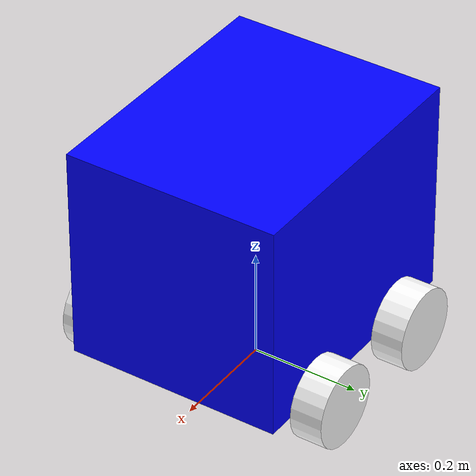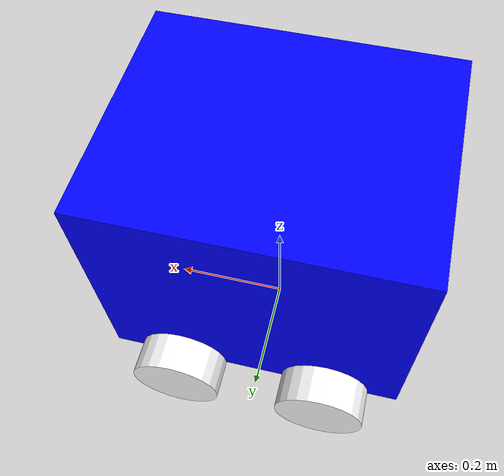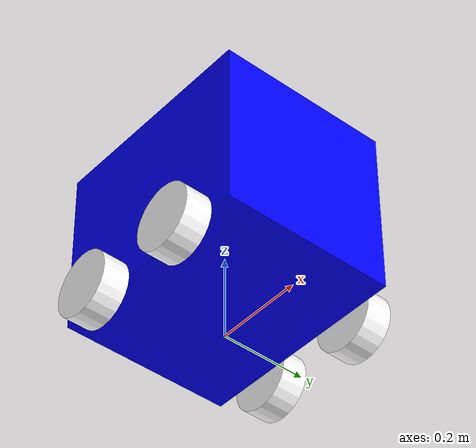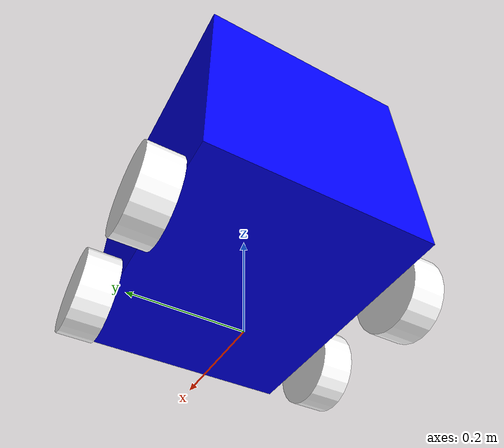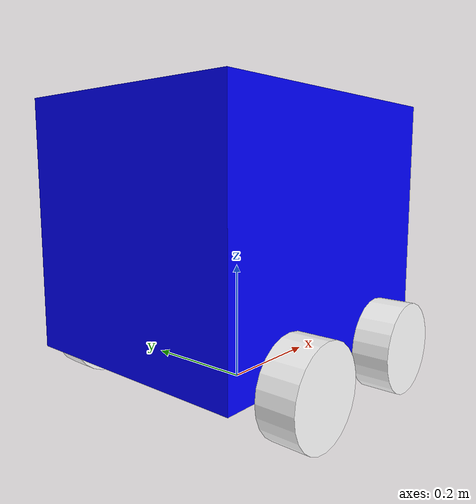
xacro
<?xml version="1.0"?>

<robot name="complete_M.A.R.S_prototype2" xmlns:xacro="http://www.ros.org/wiki/xacro">
<xacro:property name="radius" value="0.075" />
<xacro:property name="length" value="0.06" />

<!--MATERIAL COLORS -->
  <material name="blue">
    <color rgba="0 0 1 1"/>
  </material>

<material name="red">
    <color rgba="1 0 0 1"/>
  </material>

<material name="pink">
    <color rgba="0.8 0 1 0.5"/>
  </material>

    <material name="white">
    <color rgba="1 1 1 1"/>
  </material>

  <material name="green">
    <color rgba="0 1 0 1"/>
</material>

<gazebo reference="base_link_to_wheel1">
  <material>Gazebo/orange</material>
</gazebo>

<!--Visual of the Link-->
  <link name="base_link">
    <visual>

    <geometry>

        <box size="0.5 0.40 0.40"/>
       </geometry>
  <!-- Setting up the origin of the link -->
      <origin rpy="0 0 0" xyz="0 0 0.275"/>
       <material name="blue"/>
    </visual>
<!--  COLLISION -->
    <collision>
      <geometry>
       <box size="0.51 0.41 0.41"/>

      </geometry>
      <origin rpy="0 0 0" xyz="0 0 0.275"/>
    </collision>
<!--  INERTIAL -->
    <inertial>
      <mass value="5.0"/>

      <inertia
          ixx="0.1333333" ixy="0" ixz="0"
          iyy="0.1708333" iyz="0"
          izz="0.1708333"
      />
      <origin rpy="0 0 0" xyz="0 0 0.275"/>
    </inertial>

  </link>

<!--WHEEL_1-->
<!--Visual of the Link-->
  <link name="wheel1">
    <visual>
      <geometry>
      <cylinder radius="${radius}" length="${length}"/>

      </geometry>
  <!-- Setting up the origin of the link -->
       <origin rpy="0 1.57075 1.57075" xyz="0 0 0"/>
        <material name="white"/>
    </visual>
     <collision>
<!--  COLLISION -->
     <origin rpy="0 1.57075 1.57075" xyz="0 0 0"/>
      <geometry>
         <cylinder radius="${radius}" length="${length}"/>
      </geometry>
    </collision>
<!--  INERTIAL -->
 <inertial>
      <origin xyz="0 0 0" rpy="0 1.5707 1.5707"/>
      <mass value="0.4"/>
      <cylinder_inertia m="0.4" r="0.075" h="0.06"/>
      <inertia
        ixx="0.0006825" ixy="0.0" ixz="0.0"
        iyy="0.0006825" iyz="0.0"
        izz="0.001125"/>
    </inertial>

  </link>

<joint name="base_link_to_wheel1" type="continuous">
  <axis xyz="0 1 0"/>
<origin rpy="0 0 0" xyz="0.125 0.23 0.075"/>
 <joint_properties damping="1.0" friction="0.0"/>
    <parent link="base_link"/>
    <child link="wheel1"/>

  </joint>

<!--WHEEL_2-->
<!--Visual of the Link-->
<link name="wheel2">
    <visual>
      <geometry>
         <cylinder radius="${radius}" length="${length}"/>
      </geometry>
  <!-- Setting up the origin of the link -->
       <origin rpy="0 1.57075 1.57075" xyz="0 0 0"/>
       <material name="white"/>
    </visual>
     <collision>
<!--  COLLISION -->
     <origin rpy="0 1.57075 1.57075" xyz="0 0 0"/>
      <geometry>
         <cylinder radius="${radius}" length="${length}"/>
      </geometry>
    </collision>
<!--  INERTIAL -->
    <inertial>
      <origin xyz="0 0 0" rpy="0 1.5707 1.5707"/>
      <mass value="0.4"/>
      <cylinder_inertia m="0.4" r="0.075" h="0.06"/>
      <inertia
        ixx="0.0006825" ixy="0.0" ixz="0.0"
        iyy="0.0006825" iyz="0.0"
        izz="0.001125"/>
    </inertial>
  </link>

<joint name="base_link_to_wheel2" type="continuous">
    <parent link="base_link"/>
    <child link="wheel2"/>
    <origin rpy="0 0 0" xyz="-0.125 0.23 0.075"/>
    <joint_properties damping="1.0" friction="0.0"/>
    <axis xyz="0 1 0"/>

  </joint>
<!--WHEEL_3-->
<!--Visual of the Link-->
<link name="wheel3">
    <visual>
      <geometry>
  <!-- Setting up the origin of the link -->
         <cylinder radius="${radius}" length="${length}"/>
      </geometry>
       <origin rpy="0 1.57075 1.57075" xyz="0 0 0"/>
          <material name="white"/>
    </visual>
    <collision>
<!--  COLLISION -->
    <origin rpy="0 1.57075 1.57075" xyz="0 0 0"/>
      <geometry>
        <cylinder radius="${radius}" length="${length}"/>
      </geometry>
    </collision>
<!--  INERTIAL -->
    <inertial>
      <origin xyz="0 0 0" rpy="0 1.5707 1.5707"/>
      <mass value="0.4"/>
      <cylinder_inertia m="0.4" r="0.075" h="0.06"/>
      <inertia
        ixx="0.0006825" ixy="0.0" ixz="0.0"
        iyy="0.0006825" iyz="0.0"
        izz="0.001125"/>
    </inertial>
  </link>

    <joint name="base_link_to_wheel3" type="continuous">
    <parent link="base_link"/>
    <child link="wheel3"/>
    <axis xyz="0 1 0"/>
    <joint_properties damping="1.0" friction="0.0"/>
   <origin  xyz="0.125 -0.23 0.075"/>

  </joint>
<!--WHEEL_4-->
<!--Visual of the Link-->
<link name="wheel4">
    <visual>
      <geometry>
  <!-- Setting up the origin of the link -->
        <cylinder radius="${radius}" length="${length}"/>
      </geometry>
       <origin rpy="0 1.57075 1.57075" xyz="0 0 0"/>
      <material name="white"/>
    </visual>
<collision>
<!--  COLLISION -->
<origin rpy="0 1.57075 1.57075" xyz="0 0 0"/>
      <geometry>
         <cylinder radius="${radius}" length="${length}"/>
      </geometry>
    </collision>
<!--  INERTIAL -->
    <inertial>
      <origin xyz="0 0 0" rpy="0 1.5707 1.5707"/>
      <mass value="0.4"/>
      <cylinder_inertia m="0.4" r="0.075" h="0.06"/>
      <inertia
        ixx="0.0006825" ixy="0.0" ixz="0.0"
        iyy="0.0006825" iyz="0.0"
        izz="0.001125"/>
    </inertial>
  </link>

    <joint name="base_link_to_wheel4" type="continuous">
    <parent link="base_link"/>
    <child link="wheel4"/>
    <joint_properties damping="1.0" friction="0.0"/>
    <axis xyz="0 1 0"/>
    <origin  xyz="-0.125 -0.23 0.075"/>

  </joint>

<!-- GAZEBO PHYSICAL PROPERTIES-->
 <gazebo reference="base_link_to_wheel1">
      <mu1 value="200.0"/>
      <mu2 value="100.0"/>
      <kp value="10000000.0" />
      <kd value="1.0" />
      <material>Gazebo/Grey</material>
    </gazebo>
<gazebo reference="base_link_to_wheel2">
      <mu1 value="200.0"/>
      <mu2 value="100.0"/>
      <kp value="10000000.0" />
      <kd value="1.0" />
      <material>Gazebo/Grey</material>
    </gazebo>
    <gazebo reference="base_link_to_wheel3">
      <mu1 value="200.0"/>
      <mu2 value="100.0"/>
      <kp value="10000000.0" />
      <kd value="1.0" />
      <material>Gazebo/Grey</material>
    </gazebo>
    <gazebo reference="base_link_to_wheel4">
      <mu1 value="200.0"/>
      <mu2 value="100.0"/>
      <kp value="10000000.0" />
      <kd value="1.0" />
      <material>Gazebo/Grey</material>
    </gazebo>

<!-- wheel 1 transmission tag-->

<transmission name="base_to_wheel1">
  <type>transmission_interface/SimpleTransmission</type>
  <actuator name="motor1">
  <mechanicalReduction>1</mechanicalReduction>
     <hardwareInterface>VelocityJointInterface</hardwareInterface>

</actuator>
<joint name="base_link_to_wheel1">
   <hardwareInterface>hardware_interface/VelocityJointInterface</hardwareInterface>
</joint>
</transmission>

<!-- wheel 2 transmission tag-->

<transmission name="base_to_wheel2">
  <type>transmission_interface/SimpleTransmission</type>
  <actuator name="motor2">
  <mechanicalReduction>1</mechanicalReduction>
 <hardwareInterface>VelocityJointInterface</hardwareInterface>

</actuator>
<joint name="base_link_to_wheel2">
   <hardwareInterface>hardware_interface/VelocityJointInterface</hardwareInterface>
</joint>
</transmission>

<!-- wheel 3 transmission tag-->

<transmission name="base_to_wheel3">
  <type>transmission_interface/SimpleTransmission</type>
  <actuator name="motor3">
  <mechanicalReduction>1</mechanicalReduction>
   <hardwareInterface>VelocityJointInterface</hardwareInterface>

</actuator>
<joint name="base_link_to_wheel3">
   <hardwareInterface>hardware_interface/VelocityJointInterface</hardwareInterface>
</joint>
</transmission>

<!-- wheel 4 transmission tag-->

<transmission name="base_to_wheel4">
  <type>transmission_interface/SimpleTransmission</type>
  <actuator name="motor4">
  <mechanicalReduction>1</mechanicalReduction>
   <hardwareInterface>VelocityJointInterface</hardwareInterface>

</actuator>
<joint name="base_link_to_wheel4">
   <hardwareInterface>hardware_interface/VelocityJointInterface</hardwareInterface>
</joint>
</transmission>

<gazebo>
  <plugin name="gazbo_ros_control" filename="libgazebo_ros_control.so">
      <robotNamespace>/simple_model</robotNamespace>
</plugin>
</gazebo>

</robot>
